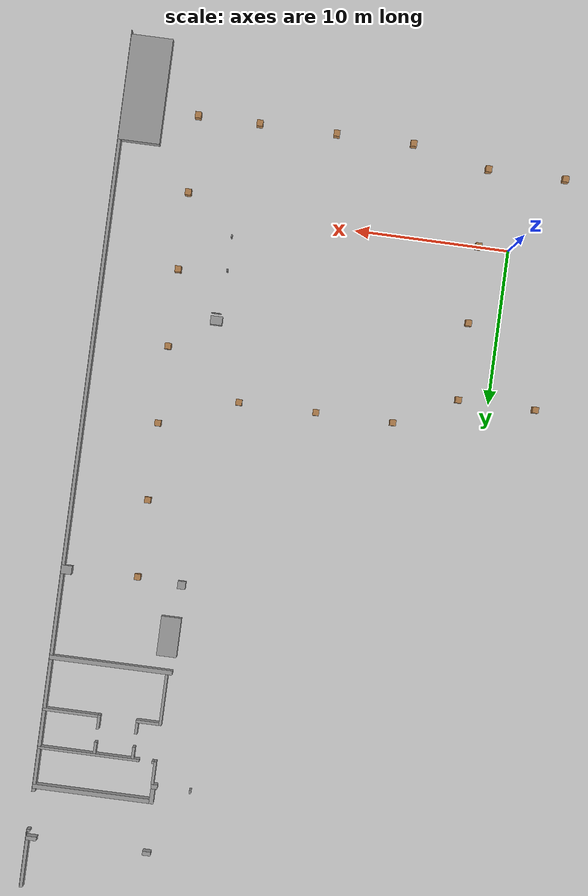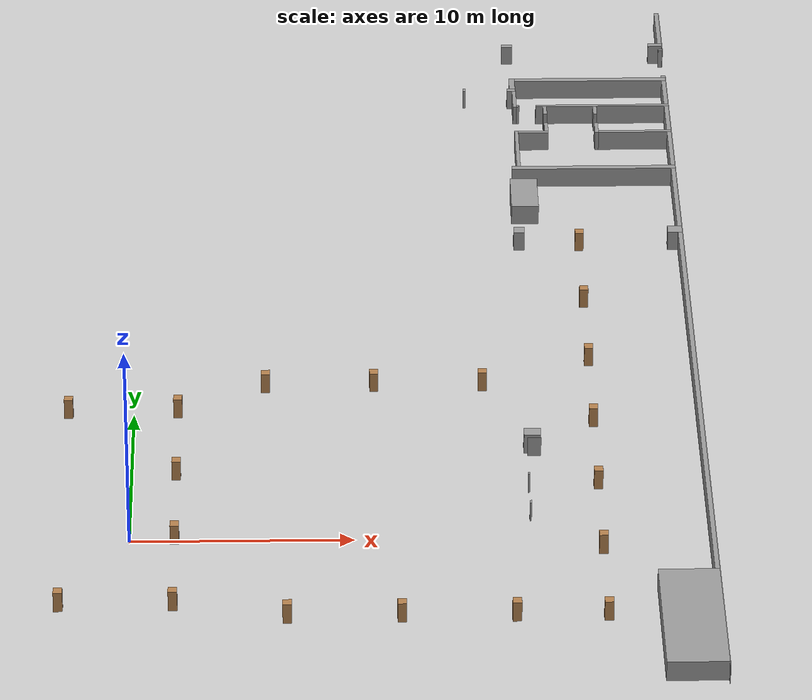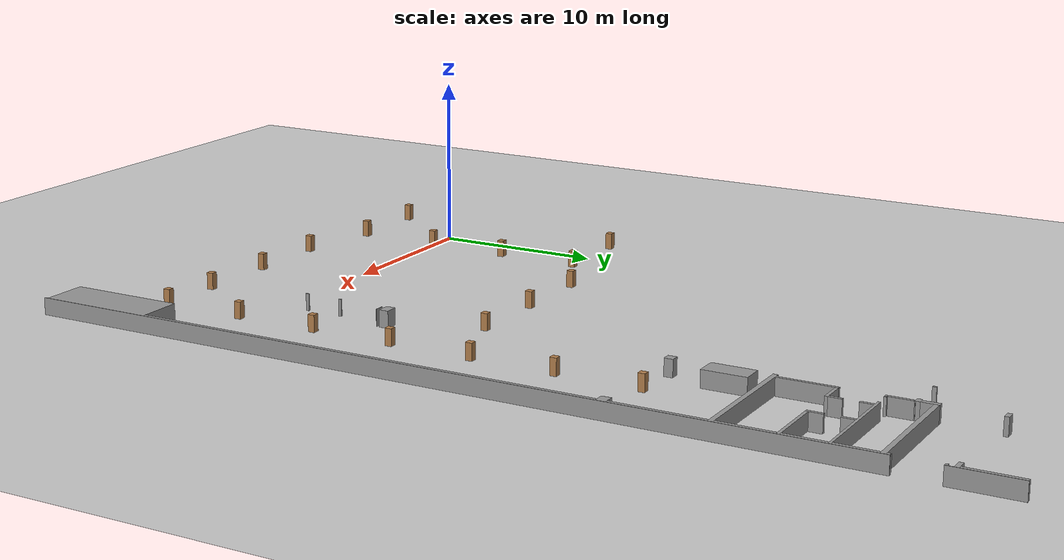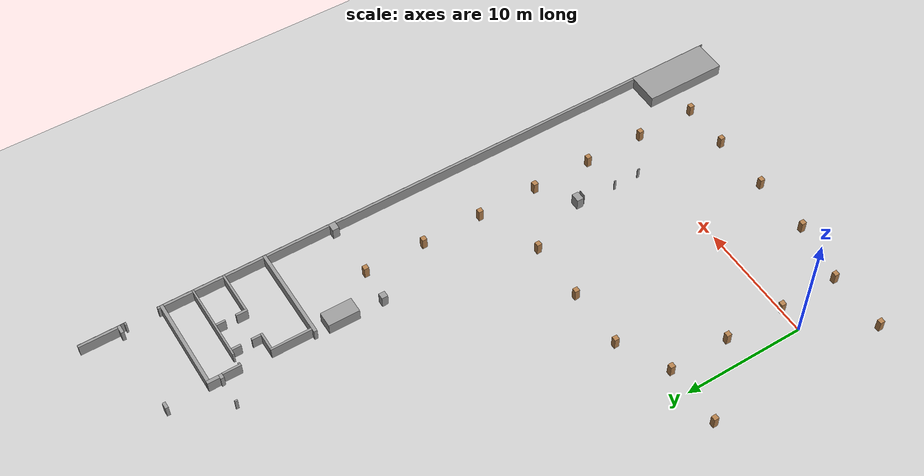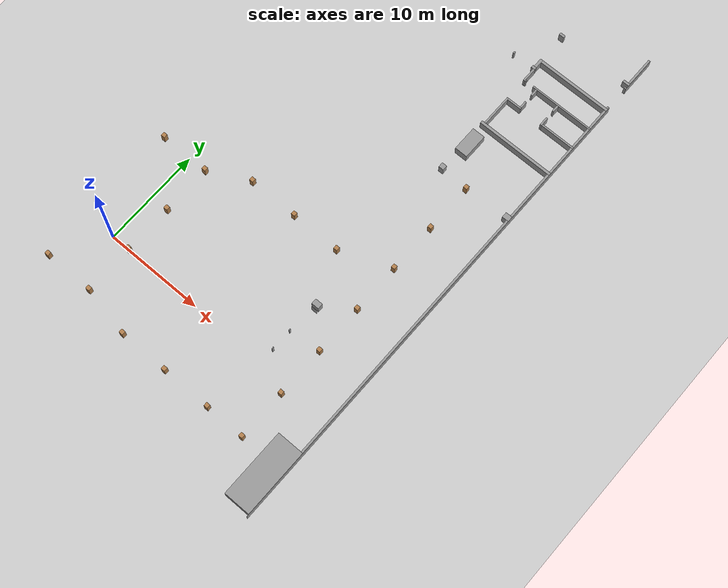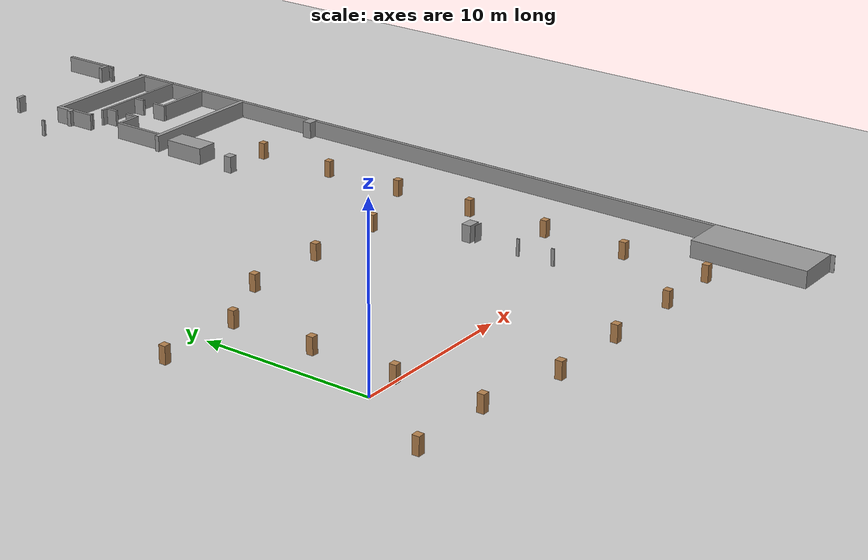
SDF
<sdf version="1.4">
 <world name="default">
  <model name="ground_plane">
   <static>1</static>
   <link name="link">
    <collision name="collision">
     <geometry><plane><normal>0 0 1</normal><size>100 100</size></plane></geometry>
     <surface><friction><ode><mu>100</mu><mu2>50</mu2></ode></friction></surface>
    </collision>
    <visual name="visual">
     <cast_shadows>0</cast_shadows>
     <geometry><plane><normal>0 0 1</normal><size>100 100</size></plane></geometry>
     <material>
      <script><uri>file://media/materials/scripts/gazebo.material</uri><name>Gazebo/Grey</name></script>
     </material>
    </visual>
    <velocity_decay><linear>0</linear><angular>0</angular></velocity_decay>
   </link>
  </model>
  <model name="walls">
   <static>1</static>
   <link name="Wall_116">
    <collision name="Wall_116_Collision">
     <geometry><box><size>0.22979 0.12766 1</size></box></geometry>
     <pose>60.0128 -22.8383 0.5 0 -0 0</pose>
    </collision>
    <visual name="Wall_116_Visual">
     <geometry><box><size>0.22979 0.12766 1</size></box></geometry>
     <material>
      <script><uri>file://media/materials/scripts/gazebo.material</uri><name>Gazebo/Grey</name></script>
     </material>
     <pose>60.0128 -22.8383 0.5 0 -0 0</pose>
    </visual>
    <velocity_decay><linear>0</linear><angular>0</angular></velocity_decay>
   </link>
   <link name="Wall_117">
    <collision name="Wall_117_Collision">
     <geometry><box><size>0.5617 0.76596 1</size></box></geometry>
     <pose>29.7191 -25.1234 0.5 0 -0 0</pose>
    </collision>
    <visual name="Wall_117_Visual">
     <geometry><box><size>0.5617 0.76596 1</size></box></geometry>
     <material>
      <script><uri>file://media/materials/scripts/gazebo.material</uri><name>Gazebo/Grey</name></script>
     </material>
     <pose>29.7191 -25.1234 0.5 0 -0 0</pose>
    </visual>
    <velocity_decay><linear>0</linear><angular>0</angular></velocity_decay>
   </link>
   <link name="Wall_118">
    <collision name="Wall_118_Collision">
     <geometry><box><size>0.20426 0.0766 1</size></box></geometry>
     <pose>24.2043 -24.8553 0.5 0 -0 0</pose>
    </collision>
    <visual name="Wall_118_Visual">
     <geometry><box><size>0.20426 0.0766 1</size></box></geometry>
     <material>
      <script><uri>file://media/materials/scripts/gazebo.material</uri><name>Gazebo/Grey</name></script>
     </material>
     <pose>24.2043 -24.8553 0.5 0 -0 0</pose>
    </visual>
    <velocity_decay><linear>0</linear><angular>0</angular></velocity_decay>
   </link>
   <link name="Wall_119">
    <collision name="Wall_119_Collision">
     <geometry><box><size>0.17872 0.0766 1</size></box></geometry>
     <pose>26.4128 -24.8553 0.5 0 -0 0</pose>
    </collision>
    <visual name="Wall_119_Visual">
     <geometry><box><size>0.17872 0.0766 1</size></box></geometry>
     <material>
      <script><uri>file://media/materials/scripts/gazebo.material</uri><name>Gazebo/Grey</name></script>
     </material>
     <pose>26.4128 -24.8553 0.5 0 -0 0</pose>
    </visual>
    <velocity_decay><linear>0</linear><angular>0</angular></velocity_decay>
   </link>
   <link name="Wall_120">
    <collision name="Wall_120_Collision">
     <geometry><box><size>2.55319 1.30213 1</size></box></geometry>
     <pose>50.2979 -25.4936 0.5 0 -0 0</pose>
    </collision>
    <visual name="Wall_120_Visual">
     <geometry><box><size>2.55319 1.30213 1</size></box></geometry>
     <material>
      <script><uri>file://media/materials/scripts/gazebo.material</uri><name>Gazebo/Grey</name></script>
     </material>
     <pose>50.2979 -25.4936 0.5 0 -0 0</pose>
    </visual>
    <velocity_decay><linear>0</linear><angular>0</angular></velocity_decay>
   </link>
   <link name="Wall_121">
    <collision name="Wall_121_Collision">
     <geometry><box><size>0.25532 0.53617 1</size></box></geometry>
     <pose>64.3149 -25.1106 0.5 0 -0 0</pose>
    </collision>
    <visual name="Wall_121_Visual">
     <geometry><box><size>0.25532 0.53617 1</size></box></geometry>
     <material>
      <script><uri>file://media/materials/scripts/gazebo.material</uri><name>Gazebo/Grey</name></script>
     </material>
     <pose>64.3149 -25.1106 0.5 0 -0 0</pose>
    </visual>
    <velocity_decay><linear>0</linear><angular>0</angular></velocity_decay>
   </link>
   <link name="Wall_122">
    <collision name="Wall_122_Collision">
     <geometry><box><size>0.51064 0.51064 1</size></box></geometry>
     <pose>46.9021 -25.1234 0.5 0 -0 0</pose>
    </collision>
    <visual name="Wall_122_Visual">
     <geometry><box><size>0.51064 0.51064 1</size></box></geometry>
     <material>
      <script><uri>file://media/materials/scripts/gazebo.material</uri><name>Gazebo/Grey</name></script>
     </material>
     <pose>46.9021 -25.1234 0.5 0 -0 0</pose>
    </visual>
    <velocity_decay><linear>0</linear><angular>0</angular></velocity_decay>
   </link>
   <link name="Wall_123">
    <collision name="Wall_123_Collision">
     <geometry><box><size>0.02553 0.61277 1</size></box></geometry>
     <pose>29.2468 -25.2 0.5 0 -0 0</pose>
    </collision>
    <visual name="Wall_123_Visual">
     <geometry><box><size>0.02553 0.61277 1</size></box></geometry>
     <material>
      <script><uri>file://media/materials/scripts/gazebo.material</uri><name>Gazebo/Grey</name></script>
     </material>
     <pose>29.2468 -25.2 0.5 0 -0 0</pose>
    </visual>
    <velocity_decay><linear>0</linear><angular>0</angular></velocity_decay>
   </link>
   <link name="Wall_124">
    <collision name="Wall_124_Collision">
     <geometry><box><size>0.28085 7.96596 1</size></box></geometry>
     <pose>52.583 -28.9532 0.5 0 -0 0</pose>
    </collision>
    <visual name="Wall_124_Visual">
     <geometry><box><size>0.28085 7.96596 1</size></box></geometry>
     <material>
      <script><uri>file://media/materials/scripts/gazebo.material</uri><name>Gazebo/Grey</name></script>
     </material>
     <pose>52.583 -28.9532 0.5 0 -0 0</pose>
    </visual>
    <velocity_decay><linear>0</linear><angular>0</angular></velocity_decay>
   </link>
   <link name="Wall_125">
    <collision name="Wall_125_Collision">
     <geometry><box><size>0.28085 0.40851 1</size></box></geometry>
     <pose>59.9872 -25.1745 0.5 0 -0 0</pose>
    </collision>
    <visual name="Wall_125_Visual">
     <geometry><box><size>0.28085 0.40851 1</size></box></geometry>
     <material>
      <script><uri>file://media/materials/scripts/gazebo.material</uri><name>Gazebo/Grey</name></script>
     </material>
     <pose>59.9872 -25.1745 0.5 0 -0 0</pose>
    </visual>
    <velocity_decay><linear>0</linear><angular>0</angular></velocity_decay>
   </link>
   <link name="Wall_126">
    <collision name="Wall_126_Collision">
     <geometry><box><size>0.97021 0.28085 1</size></box></geometry>
     <pose>60.6128 -25.2383 0.5 0 -0 0</pose>
    </collision>
    <visual name="Wall_126_Visual">
     <geometry><box><size>0.97021 0.28085 1</size></box></geometry>
     <material>
      <script><uri>file://media/materials/scripts/gazebo.material</uri><name>Gazebo/Grey</name></script>
     </material>
     <pose>60.6128 -25.2383 0.5 0 -0 0</pose>
    </visual>
    <velocity_decay><linear>0</linear><angular>0</angular></velocity_decay>
   </link>
   <link name="Wall_127">
    <collision name="Wall_127_Collision">
     <geometry><box><size>3.31915 0.17872 1</size></box></geometry>
     <pose>54.383 -25.3149 0.5 0 -0 0</pose>
    </collision>
    <visual name="Wall_127_Visual">
     <geometry><box><size>3.31915 0.17872 1</size></box></geometry>
     <material>
      <script><uri>file://media/materials/scripts/gazebo.material</uri><name>Gazebo/Grey</name></script>
     </material>
     <pose>54.383 -25.3149 0.5 0 -0 0</pose>
    </visual>
    <velocity_decay><linear>0</linear><angular>0</angular></velocity_decay>
   </link>
   <link name="Wall_128">
    <collision name="Wall_128_Collision">
     <geometry><box><size>1.48085 0.17872 1</size></box></geometry>
     <pose>59.1064 -25.3149 0.5 0 -0 0</pose>
    </collision>
    <visual name="Wall_128_Visual">
     <geometry><box><size>1.48085 0.17872 1</size></box></geometry>
     <material>
      <script><uri>file://media/materials/scripts/gazebo.material</uri><name>Gazebo/Grey</name></script>
     </material>
     <pose>59.1064 -25.3149 0.5 0 -0 0</pose>
    </visual>
    <velocity_decay><linear>0</linear><angular>0</angular></velocity_decay>
   </link>
   <link name="Wall_129">
    <collision name="Wall_129_Collision">
     <geometry><box><size>0.05106 0.02553 1</size></box></geometry>
     <pose>59.8723 -25.3915 0.5 0 -0 0</pose>
    </collision>
    <visual name="Wall_129_Visual">
     <geometry><box><size>0.05106 0.02553 1</size></box></geometry>
     <material>
      <script><uri>file://media/materials/scripts/gazebo.material</uri><name>Gazebo/Grey</name></script>
     </material>
     <pose>59.8723 -25.3915 0.5 0 -0 0</pose>
    </visual>
    <velocity_decay><linear>0</linear><angular>0</angular></velocity_decay>
   </link>
   <link name="Wall_130">
    <collision name="Wall_130_Collision">
     <geometry><box><size>0.28085 7.55745 1</size></box></geometry>
     <pose>60.9575 -29.1575 0.5 0 -0 0</pose>
    </collision>
    <visual name="Wall_130_Visual">
     <geometry><box><size>0.28085 7.55745 1</size></box></geometry>
     <material>
      <script><uri>file://media/materials/scripts/gazebo.material</uri><name>Gazebo/Grey</name></script>
     </material>
     <pose>60.9575 -29.1575 0.5 0 -0 0</pose>
    </visual>
    <velocity_decay><linear>0</linear><angular>0</angular></velocity_decay>
   </link>
   <link name="Wall_131">
    <collision name="Wall_131_Collision">
     <geometry><box><size>0.17872 1.48085 1</size></box></geometry>
     <pose>55.9532 -26.1447 0.5 0 -0 0</pose>
    </collision>
    <visual name="Wall_131_Visual">
     <geometry><box><size>0.17872 1.48085 1</size></box></geometry>
     <material>
      <script><uri>file://media/materials/scripts/gazebo.material</uri><name>Gazebo/Grey</name></script>
     </material>
     <pose>55.9532 -26.1447 0.5 0 -0 0</pose>
    </visual>
    <velocity_decay><linear>0</linear><angular>0</angular></velocity_decay>
   </link>
   <link name="Wall_132">
    <collision name="Wall_132_Collision">
     <geometry><box><size>0.15319 0.12766 1</size></box></geometry>
     <pose>58.4425 -25.4681 0.5 0 -0 0</pose>
    </collision>
    <visual name="Wall_132_Visual">
     <geometry><box><size>0.15319 0.12766 1</size></box></geometry>
     <material>
      <script><uri>file://media/materials/scripts/gazebo.material</uri><name>Gazebo/Grey</name></script>
     </material>
     <pose>58.4425 -25.4681 0.5 0 -0 0</pose>
    </visual>
    <velocity_decay><linear>0</linear><angular>0</angular></velocity_decay>
   </link>
   <link name="Wall_133">
    <collision name="Wall_133_Collision">
     <geometry><box><size>0.15319 6.58723 1</size></box></geometry>
     <pose>58.4425 -29.6425 0.5 0 -0 0</pose>
    </collision>
    <visual name="Wall_133_Visual">
     <geometry><box><size>0.15319 6.58723 1</size></box></geometry>
     <material>
      <script><uri>file://media/materials/scripts/gazebo.material</uri><name>Gazebo/Grey</name></script>
     </material>
     <pose>58.4425 -29.6425 0.5 0 -0 0</pose>
    </visual>
    <velocity_decay><linear>0</linear><angular>0</angular></velocity_decay>
   </link>
   <link name="Wall_134">
    <collision name="Wall_134_Collision">
     <geometry><box><size>0.74043 0.17872 1</size></box></geometry>
     <pose>56.4128 -26.7957 0.5 0 -0 0</pose>
    </collision>
    <visual name="Wall_134_Visual">
     <geometry><box><size>0.74043 0.17872 1</size></box></geometry>
     <material>
      <script><uri>file://media/materials/scripts/gazebo.material</uri><name>Gazebo/Grey</name></script>
     </material>
     <pose>56.4128 -26.7957 0.5 0 -0 0</pose>
    </visual>
    <velocity_decay><linear>0</linear><angular>0</angular></velocity_decay>
   </link>
   <link name="Wall_135">
    <collision name="Wall_135_Collision">
     <geometry><box><size>0.74043 0.17872 1</size></box></geometry>
     <pose>57.9957 -26.7957 0.5 0 -0 0</pose>
    </collision>
    <visual name="Wall_135_Visual">
     <geometry><box><size>0.74043 0.17872 1</size></box></geometry>
     <material>
      <script><uri>file://media/materials/scripts/gazebo.material</uri><name>Gazebo/Grey</name></script>
     </material>
     <pose>57.9957 -26.7957 0.5 0 -0 0</pose>
    </visual>
    <velocity_decay><linear>0</linear><angular>0</angular></velocity_decay>
   </link>
   <link name="Wall_136">
    <collision name="Wall_136_Collision">
     <geometry><box><size>0.91915 0.17872 1</size></box></geometry>
     <pose>56.3234 -29.2723 0.5 0 -0 0</pose>
    </collision>
    <visual name="Wall_136_Visual">
     <geometry><box><size>0.91915 0.17872 1</size></box></geometry>
     <material>
      <script><uri>file://media/materials/scripts/gazebo.material</uri><name>Gazebo/Grey</name></script>
     </material>
     <pose>56.3234 -29.2723 0.5 0 -0 0</pose>
    </visual>
    <velocity_decay><linear>0</linear><angular>0</angular></velocity_decay>
   </link>
   <link name="Wall_137">
    <collision name="Wall_137_Collision">
     <geometry><box><size>0.74043 0.17872 1</size></box></geometry>
     <pose>57.9957 -29.2723 0.5 0 -0 0</pose>
    </collision>
    <visual name="Wall_137_Visual">
     <geometry><box><size>0.74043 0.17872 1</size></box></geometry>
     <material>
      <script><uri>file://media/materials/scripts/gazebo.material</uri><name>Gazebo/Grey</name></script>
     </material>
     <pose>57.9957 -29.2723 0.5 0 -0 0</pose>
    </visual>
    <velocity_decay><linear>0</linear><angular>0</angular></velocity_decay>
   </link>
   <link name="Wall_138">
    <collision name="Wall_138_Collision">
     <geometry><box><size>0.17872 3.57447 1</size></box></geometry>
     <pose>55.9532 -31.1489 0.5 0 -0 0</pose>
    </collision>
    <visual name="Wall_138_Visual">
     <geometry><box><size>0.17872 3.57447 1</size></box></geometry>
     <material>
      <script><uri>file://media/materials/scripts/gazebo.material</uri><name>Gazebo/Grey</name></script>
     </material>
     <pose>55.9532 -31.1489 0.5 0 -0 0</pose>
    </visual>
    <velocity_decay><linear>0</linear><angular>0</angular></velocity_decay>
   </link>
   <link name="Wall_139">
    <collision name="Wall_139_Collision">
     <geometry><box><size>6.81702 2.70638 1</size></box></geometry>
     <pose>15.5617 -31.583 0.5 0 -0 0</pose>
    </collision>
    <visual name="Wall_139_Visual">
     <geometry><box><size>6.81702 2.70638 1</size></box></geometry>
     <material>
      <script><uri>file://media/materials/scripts/gazebo.material</uri><name>Gazebo/Grey</name></script>
     </material>
     <pose>15.5617 -31.583 0.5 0 -0 0</pose>
    </visual>
    <velocity_decay><linear>0</linear><angular>0</angular></velocity_decay>
   </link>
   <link name="Wall_140">
    <collision name="Wall_140_Collision">
     <geometry><box><size>0.5617 0.68936 1</size></box></geometry>
     <pose>46.8766 -32.5915 0.5 0 -0 0</pose>
    </collision>
    <visual name="Wall_140_Visual">
     <geometry><box><size>0.5617 0.68936 1</size></box></geometry>
     <material>
      <script><uri>file://media/materials/scripts/gazebo.material</uri><name>Gazebo/Grey</name></script>
     </material>
     <pose>46.8766 -32.5915 0.5 0 -0 0</pose>
    </visual>
    <velocity_decay><linear>0</linear><angular>0</angular></velocity_decay>
   </link>
   <link name="Wall_141">
    <collision name="Wall_141_Collision">
     <geometry><box><size>0.25532 0.68936 1</size></box></geometry>
     <pose>64.3149 -32.5915 0.5 0 -0 0</pose>
    </collision>
    <visual name="Wall_141_Visual">
     <geometry><box><size>0.25532 0.68936 1</size></box></geometry>
     <material>
      <script><uri>file://media/materials/scripts/gazebo.material</uri><name>Gazebo/Grey</name></script>
     </material>
     <pose>64.3149 -32.5915 0.5 0 -0 0</pose>
    </visual>
    <velocity_decay><linear>0</linear><angular>0</angular></velocity_decay>
   </link>
   <link name="Wall_142">
    <collision name="Wall_142_Collision">
     <geometry><box><size>27.6255 0.20426 1</size></box></geometry>
     <pose>32.783 -32.834 0.5 0 -0 0</pose>
    </collision>
    <visual name="Wall_142_Visual">
     <geometry><box><size>27.6255 0.20426 1</size></box></geometry>
     <material>
      <script><uri>file://media/materials/scripts/gazebo.material</uri><name>Gazebo/Grey</name></script>
     </material>
     <pose>32.783 -32.834 0.5 0 -0 0</pose>
    </visual>
    <velocity_decay><linear>0</linear><angular>0</angular></velocity_decay>
   </link>
   <link name="Wall_143">
    <collision name="Wall_143_Collision">
     <geometry><box><size>5.28511 0.20426 1</size></box></geometry>
     <pose>49.8 -32.834 0.5 0 -0 0</pose>
    </collision>
    <visual name="Wall_143_Visual">
     <geometry><box><size>5.28511 0.20426 1</size></box></geometry>
     <material>
      <script><uri>file://media/materials/scripts/gazebo.material</uri><name>Gazebo/Grey</name></script>
     </material>
     <pose>49.8 -32.834 0.5 0 -0 0</pose>
    </visual>
    <velocity_decay><linear>0</linear><angular>0</angular></velocity_decay>
   </link>
   <link name="Wall_144">
    <collision name="Wall_144_Collision">
     <geometry><box><size>3.14043 0.20426 1</size></box></geometry>
     <pose>54.2936 -32.834 0.5 0 -0 0</pose>
    </collision>
    <visual name="Wall_144_Visual">
     <geometry><box><size>3.14043 0.20426 1</size></box></geometry>
     <material>
      <script><uri>file://media/materials/scripts/gazebo.material</uri><name>Gazebo/Grey</name></script>
     </material>
     <pose>54.2936 -32.834 0.5 0 -0 0</pose>
    </visual>
    <velocity_decay><linear>0</linear><angular>0</angular></velocity_decay>
   </link>
   <link name="Wall_145">
    <collision name="Wall_145_Collision">
     <geometry><box><size>2.3234 0.20426 1</size></box></geometry>
     <pose>57.2043 -32.834 0.5 0 -0 0</pose>
    </collision>
    <visual name="Wall_145_Visual">
     <geometry><box><size>2.3234 0.20426 1</size></box></geometry>
     <material>
      <script><uri>file://media/materials/scripts/gazebo.material</uri><name>Gazebo/Grey</name></script>
     </material>
     <pose>57.2043 -32.834 0.5 0 -0 0</pose>
    </visual>
    <velocity_decay><linear>0</linear><angular>0</angular></velocity_decay>
   </link>
   <link name="Wall_146">
    <collision name="Wall_146_Collision">
     <geometry><box><size>2.29787 0.20426 1</size></box></geometry>
     <pose>59.6681 -32.834 0.5 0 -0 0</pose>
    </collision>
    <visual name="Wall_146_Visual">
     <geometry><box><size>2.29787 0.20426 1</size></box></geometry>
     <material>
      <script><uri>file://media/materials/scripts/gazebo.material</uri><name>Gazebo/Grey</name></script>
     </material>
     <pose>59.6681 -32.834 0.5 0 -0 0</pose>
    </visual>
    <velocity_decay><linear>0</linear><angular>0</angular></velocity_decay>
   </link>
   <link name="Wall_147">
    <collision name="Wall_147_Collision">
     <geometry><box><size>0.20426 0.20426 1</size></box></geometry>
     <pose>61.2 -32.834 0.5 0 -0 0</pose>
    </collision>
    <visual name="Wall_147_Visual">
     <geometry><box><size>0.20426 0.20426 1</size></box></geometry>
     <material>
      <script><uri>file://media/materials/scripts/gazebo.material</uri><name>Gazebo/Grey</name></script>
     </material>
     <pose>61.2 -32.834 0.5 0 -0 0</pose>
    </visual>
    <velocity_decay><linear>0</linear><angular>0</angular></velocity_decay>
   </link>
   <link name="Wall_148">
    <collision name="Wall_148_Collision">
     <geometry><box><size>0.15319 0.20426 1</size></box></geometry>
     <pose>63.8298 -32.834 0.5 0 -0 0</pose>
    </collision>
    <visual name="Wall_148_Visual">
     <geometry><box><size>0.15319 0.20426 1</size></box></geometry>
     <material>
      <script><uri>file://media/materials/scripts/gazebo.material</uri><name>Gazebo/Grey</name></script>
     </material>
     <pose>63.8298 -32.834 0.5 0 -0 0</pose>
    </visual>
    <velocity_decay><linear>0</linear><angular>0</angular></velocity_decay>
   </link>
   <link name="Wall_149">
    <collision name="Wall_149_Collision">
     <geometry><box><size>3.06383 0.20426 1</size></box></geometry>
     <pose>65.9745 -32.834 0.5 0 -0 0</pose>
    </collision>
    <visual name="Wall_149_Visual">
     <geometry><box><size>3.06383 0.20426 1</size></box></geometry>
     <material>
      <script><uri>file://media/materials/scripts/gazebo.material</uri><name>Gazebo/Grey</name></script>
     </material>
     <pose>65.9745 -32.834 0.5 0 -0 0</pose>
    </visual>
    <velocity_decay><linear>0</linear><angular>0</angular></velocity_decay>
   </link>
   <link name="Wall_150">
    <collision name="Wall_150_Collision">
     <geometry><box><size>49.4043 0.02553 1</size></box></geometry>
     <pose>36.6 -32.9489 0.5 0 -0 0</pose>
    </collision>
    <visual name="Wall_150_Visual">
     <geometry><box><size>49.4043 0.02553 1</size></box></geometry>
     <material>
      <script><uri>file://media/materials/scripts/gazebo.material</uri><name>Gazebo/Grey</name></script>
     </material>
     <pose>36.6 -32.9489 0.5 0 -0 0</pose>
    </visual>
    <velocity_decay><linear>0</linear><angular>0</angular></velocity_decay>
   </link>
   <link name="Wall_151">
    <collision name="Wall_151_Collision">
     <geometry><box><size>3.75319 0.02553 1</size></box></geometry>
     <pose>65.6298 -32.9489 0.5 0 -0 0</pose>
    </collision>
    <visual name="Wall_151_Visual">
     <geometry><box><size>3.75319 0.02553 1</size></box></geometry>
     <material>
      <script><uri>file://media/materials/scripts/gazebo.material</uri><name>Gazebo/Grey</name></script>
     </material>
     <pose>65.6298 -32.9489 0.5 0 -0 0</pose>
    </visual>
    <velocity_decay><linear>0</linear><angular>0</angular></velocity_decay>
   </link>
   <pose>-7 -22.75 0 0 -0 1.5708</pose>
  </model>
  <model name="box_12">
   <static>0</static>
   <link name="link">
    <collision name="colision"><geometry><box><size>0.4 0.4 1</size></box></geometry></collision>
    <visual name="visual">
     <geometry><box><size>0.4 0.4 1</size></box></geometry>
     <material>
      <script><uri>file://media/materials/scripts/gazebo.material</uri><name>Gazebo/WoodPallet</name></script>
     </material>
    </visual>
    <velocity_decay><linear>0</linear><angular>0</angular></velocity_decay>
    <inertial>
     <inertia><ixx>1</ixx><ixy>0</ixy><ixz>0</ixz><iyy>1</iyy><iyz>0</iyz><izz>1</izz></inertia>
     <mass>1</mass>
    </inertial>
   </link>
   <pose>7 -5.99998 0.500001 1e-06 5e-06 -0.000179</pose>
  </model>
  <model name="box_13">
   <static>0</static>
   <link name="link">
    <collision name="colision"><geometry><box><size>0.4 0.4 1</size></box></geometry></collision>
    <visual name="visual">
     <geometry><box><size>0.4 0.4 1</size></box></geometry>
     <material>
      <script><uri>file://media/materials/scripts/gazebo.material</uri><name>Gazebo/WoodPallet</name></script>
     </material>
    </visual>
    <velocity_decay><linear>0</linear><angular>0</angular></velocity_decay>
    <inertial>
     <inertia><ixx>1</ixx><ixy>0</ixy><ixz>0</ixz><iyy>1</iyy><iyz>0</iyz><izz>1</izz></inertia>
     <mass>1</mass>
    </inertial>
   </link>
   <pose>12 -6 0.5 1e-06 -0 -0.000118</pose>
  </model>
  <model name="box_14">
   <static>0</static>
   <link name="link">
    <collision name="colision"><geometry><box><size>0.4 0.4 1</size></box></geometry></collision>
    <visual name="visual">
     <geometry><box><size>0.4 0.4 1</size></box></geometry>
     <material>
      <script><uri>file://media/materials/scripts/gazebo.material</uri><name>Gazebo/WoodPallet</name></script>
     </material>
    </visual>
    <velocity_decay><linear>0</linear><angular>0</angular></velocity_decay>
    <inertial>
     <inertia><ixx>1</ixx><ixy>0</ixy><ixz>0</ixz><iyy>1</iyy><iyz>0</iyz><izz>1</izz></inertia>
     <mass>1</mass>
    </inertial>
   </link>
   <pose>17 -5.99999 0.5 1e-06 -1e-06 -7.4e-05</pose>
  </model>
  <model name="box_21">
   <static>0</static>
   <link name="link">
    <collision name="colision"><geometry><box><size>0.4 0.4 1</size></box></geometry></collision>
    <visual name="visual">
     <geometry><box><size>0.4 0.4 1</size></box></geometry>
     <material>
      <script><uri>file://media/materials/scripts/gazebo.material</uri><name>Gazebo/WoodPallet</name></script>
     </material>
    </visual>
    <velocity_decay><linear>0</linear><angular>0</angular></velocity_decay>
    <inertial>
     <inertia><ixx>1</ixx><ixy>0</ixy><ixz>0</ixz><iyy>1</iyy><iyz>0</iyz><izz>1</izz></inertia>
     <mass>1</mass>
    </inertial>
   </link>
   <pose>21 -5.99999 0.5 -1e-06 -2e-06 -0.000121</pose>
  </model>
  <model name="box_22">
   <static>0</static>
   <link name="link">
    <collision name="colision"><geometry><box><size>0.4 0.4 1</size></box></geometry></collision>
    <visual name="visual">
     <geometry><box><size>0.4 0.4 1</size></box></geometry>
     <material>
      <script><uri>file://media/materials/scripts/gazebo.material</uri><name>Gazebo/WoodPallet</name></script>
     </material>
    </visual>
    <velocity_decay><linear>0</linear><angular>0</angular></velocity_decay>
    <inertial>
     <inertia><ixx>1</ixx><ixy>0</ixy><ixz>0</ixz><iyy>1</iyy><iyz>0</iyz><izz>1</izz></inertia>
     <mass>1</mass>
    </inertial>
   </link>
   <pose>21 -0.999994 0.5 -8.07794e-28 1e-06 -7e-06</pose>
  </model>
  <model name="box_23">
   <static>0</static>
   <link name="link">
    <collision name="colision"><geometry><box><size>0.4 0.4 1</size></box></geometry></collision>
    <visual name="visual">
     <geometry><box><size>0.4 0.4 1</size></box></geometry>
     <material>
      <script><uri>file://media/materials/scripts/gazebo.material</uri><name>Gazebo/WoodPallet</name></script>
     </material>
    </visual>
    <velocity_decay><linear>0</linear><angular>0</angular></velocity_decay>
    <inertial>
     <inertia><ixx>1</ixx><ixy>0</ixy><ixz>0</ixz><iyy>1</iyy><iyz>0</iyz><izz>1</izz></inertia>
     <mass>1</mass>
    </inertial>
   </link>
   <pose>21 4.00001 0.500001 7e-06 -1e-06 -8.1e-05</pose>
  </model>
  <model name="box_24">
   <static>0</static>
   <link name="link">
    <collision name="colision"><geometry><box><size>0.4 0.4 1</size></box></geometry></collision>
    <visual name="visual">
     <geometry><box><size>0.4 0.4 1</size></box></geometry>
     <material>
      <script><uri>file://media/materials/scripts/gazebo.material</uri><name>Gazebo/WoodPallet</name></script>
     </material>
    </visual>
    <velocity_decay><linear>0</linear><angular>0</angular></velocity_decay>
    <inertial>
     <inertia><ixx>1</ixx><ixy>0</ixy><ixz>0</ixz><iyy>1</iyy><iyz>0</iyz><izz>1</izz></inertia>
     <mass>1</mass>
    </inertial>
   </link>
   <pose>21 9.00001 0.5 2e-06 -0 -4.6e-05</pose>
  </model>
  <model name="box_25">
   <static>0</static>
   <link name="link">
    <collision name="colision"><geometry><box><size>0.4 0.4 1</size></box></geometry></collision>
    <visual name="visual">
     <geometry><box><size>0.4 0.4 1</size></box></geometry>
     <material>
      <script><uri>file://media/materials/scripts/gazebo.material</uri><name>Gazebo/WoodPallet</name></script>
     </material>
    </visual>
    <velocity_decay><linear>0</linear><angular>0</angular></velocity_decay>
    <inertial>
     <inertia><ixx>1</ixx><ixy>0</ixy><ixz>0</ixz><iyy>1</iyy><iyz>0</iyz><izz>1</izz></inertia>
     <mass>1</mass>
    </inertial>
   </link>
   <pose>21 14 0.5 6.46235e-27 1e-06 3.8e-05</pose>
  </model>
  <model name="box_26">
   <static>0</static>
   <link name="link">
    <collision name="colision"><geometry><box><size>0.4 0.4 1</size></box></geometry></collision>
    <visual name="visual">
     <geometry><box><size>0.4 0.4 1</size></box></geometry>
     <material>
      <script><uri>file://media/materials/scripts/gazebo.material</uri><name>Gazebo/WoodPallet</name></script>
     </material>
    </visual>
    <velocity_decay><linear>0</linear><angular>0</angular></velocity_decay>
    <inertial>
     <inertia><ixx>1</ixx><ixy>0</ixy><ixz>0</ixz><iyy>1</iyy><iyz>0</iyz><izz>1</izz></inertia>
     <mass>1</mass>
    </inertial>
   </link>
   <pose>21 19 0.5 1e-06 -0 -4.8e-05</pose>
  </model>
  <model name="box_27">
   <static>0</static>
   <link name="link">
    <collision name="colision"><geometry><box><size>0.4 0.4 1</size></box></geometry></collision>
    <visual name="visual">
     <geometry><box><size>0.4 0.4 1</size></box></geometry>
     <material>
      <script><uri>file://media/materials/scripts/gazebo.material</uri><name>Gazebo/WoodPallet</name></script>
     </material>
    </visual>
    <velocity_decay><linear>0</linear><angular>0</angular></velocity_decay>
    <inertial>
     <inertia><ixx>1</ixx><ixy>0</ixy><ixz>0</ixz><iyy>1</iyy><iyz>0</iyz><izz>1</izz></inertia>
     <mass>1</mass>
    </inertial>
   </link>
   <pose>21 24 0.5 -2.58494e-26 -1e-06 -0.00016</pose>
  </model>
  <model name="box_28">
   <static>0</static>
   <link name="link">
    <collision name="colision"><geometry><box><size>0.4 0.4 1</size></box></geometry></collision>
    <visual name="visual">
     <geometry><box><size>0.4 0.4 1</size></box></geometry>
     <material>
      <script><uri>file://media/materials/scripts/gazebo.material</uri><name>Gazebo/WoodPallet</name></script>
     </material>
    </visual>
    <velocity_decay><linear>0</linear><angular>0</angular></velocity_decay>
    <inertial>
     <inertia><ixx>1</ixx><ixy>0</ixy><ixz>0</ixz><iyy>1</iyy><iyz>0</iyz><izz>1</izz></inertia>
     <mass>1</mass>
    </inertial>
   </link>
   <pose>16 12 0.500001 6e-06 1.03398e-25 -7.2e-05</pose>
  </model>
  <model name="box_29">
   <static>0</static>
   <link name="link">
    <collision name="colision"><geometry><box><size>0.4 0.4 1</size></box></geometry></collision>
    <visual name="visual">
     <geometry><box><size>0.4 0.4 1</size></box></geometry>
     <material>
      <script><uri>file://media/materials/scripts/gazebo.material</uri><name>Gazebo/WoodPallet</name></script>
     </material>
    </visual>
    <velocity_decay><linear>0</linear><angular>0</angular></velocity_decay>
    <inertial>
     <inertia><ixx>1</ixx><ixy>0</ixy><ixz>0</ixz><iyy>1</iyy><iyz>0</iyz><izz>1</izz></inertia>
     <mass>1</mass>
    </inertial>
   </link>
   <pose>11 12 0.500001 -2e-06 -2e-06 -0.00014</pose>
  </model>
  <model name="box_30">
   <static>0</static>
   <link name="link">
    <collision name="colision"><geometry><box><size>0.4 0.4 1</size></box></geometry></collision>
    <visual name="visual">
     <geometry><box><size>0.4 0.4 1</size></box></geometry>
     <material>
      <script><uri>file://media/materials/scripts/gazebo.material</uri><name>Gazebo/WoodPallet</name></script>
     </material>
    </visual>
    <velocity_decay><linear>0</linear><angular>0</angular></velocity_decay>
    <inertial>
     <inertia><ixx>1</ixx><ixy>0</ixy><ixz>0</ixz><iyy>1</iyy><iyz>0</iyz><izz>1</izz></inertia>
     <mass>1</mass>
    </inertial>
   </link>
   <pose>6 12 0.5 -1e-06 -1.29247e-26 -0.000113</pose>
  </model>
  <model name="box_31">
   <static>0</static>
   <link name="link">
    <collision name="colision"><geometry><box><size>0.4 0.4 1</size></box></geometry></collision>
    <visual name="visual">
     <geometry><box><size>0.4 0.4 1</size></box></geometry>
     <material>
      <script><uri>file://media/materials/scripts/gazebo.material</uri><name>Gazebo/WoodPallet</name></script>
     </material>
    </visual>
    <velocity_decay><linear>0</linear><angular>0</angular></velocity_decay>
    <inertial>
     <inertia><ixx>1</ixx><ixy>0</ixy><ixz>0</ixz><iyy>1</iyy><iyz>0</iyz><izz>1</izz></inertia>
     <mass>1</mass>
    </inertial>
   </link>
   <pose>2 5.00002 0.5 0 1e-06 -7.9e-05</pose>
  </model>
  <model name="box_32">
   <static>0</static>
   <link name="link">
    <collision name="colision"><geometry><box><size>0.4 0.4 1</size></box></geometry></collision>
    <visual name="visual">
     <geometry><box><size>0.4 0.4 1</size></box></geometry>
     <material>
      <script><uri>file://media/materials/scripts/gazebo.material</uri><name>Gazebo/WoodPallet</name></script>
     </material>
    </visual>
    <velocity_decay><linear>0</linear><angular>0</angular></velocity_decay>
    <inertial>
     <inertia><ixx>1</ixx><ixy>0</ixy><ixz>0</ixz><iyy>1</iyy><iyz>0</iyz><izz>1</izz></inertia>
     <mass>1</mass>
    </inertial>
   </link>
   <pose>2 1.9e-05 0.5 0 0 -9.6e-05</pose>
  </model>
  <model name="box_33">
   <static>0</static>
   <link name="link">
    <collision name="colision"><geometry><box><size>0.4 0.4 1</size></box></geometry></collision>
    <visual name="visual">
     <geometry><box><size>0.4 0.4 1</size></box></geometry>
     <material>
      <script><uri>file://media/materials/scripts/gazebo.material</uri><name>Gazebo/WoodPallet</name></script>
     </material>
    </visual>
    <velocity_decay><linear>0</linear><angular>0</angular></velocity_decay>
    <inertial>
     <inertia><ixx>1</ixx><ixy>0</ixy><ixz>0</ixz><iyy>1</iyy><iyz>0</iyz><izz>1</izz></inertia>
     <mass>1</mass>
    </inertial>
   </link>
   <pose>2 -4.99998 0.5 -2e-06 2.58494e-26 -8.6e-05</pose>
  </model>
  <model name="box_34">
   <static>0</static>
   <link name="link">
    <collision name="colision"><geometry><box><size>0.4 0.4 1</size></box></geometry></collision>
    <visual name="visual">
     <geometry><box><size>0.4 0.4 1</size></box></geometry>
     <material>
      <script><uri>file://media/materials/scripts/gazebo.material</uri><name>Gazebo/WoodPallet</name></script>
     </material>
    </visual>
    <velocity_decay><linear>0</linear><angular>0</angular></velocity_decay>
    <inertial>
     <inertia><ixx>1</ixx><ixy>0</ixy><ixz>0</ixz><iyy>1</iyy><iyz>0</iyz><izz>1</izz></inertia>
     <mass>1</mass>
    </inertial>
   </link>
   <pose>2 10 0.5 0 -2e-06 -0.00012</pose>
  </model>
  <model name="box_35">
   <static>0</static>
   <link name="link">
    <collision name="colision"><geometry><box><size>0.4 0.4 1</size></box></geometry></collision>
    <visual name="visual">
     <geometry><box><size>0.4 0.4 1</size></box></geometry>
     <material>
      <script><uri>file://media/materials/scripts/gazebo.material</uri><name>Gazebo/WoodPallet</name></script>
     </material>
    </visual>
    <velocity_decay><linear>0</linear><angular>0</angular></velocity_decay>
    <inertial>
     <inertia><ixx>1</ixx><ixy>0</ixy><ixz>0</ixz><iyy>1</iyy><iyz>0</iyz><izz>1</izz></inertia>
     <mass>1</mass>
    </inertial>
   </link>
   <pose>-3 10 0.5 0 -0 -4.2e-05</pose>
  </model>
  <model name="box_36">
   <static>0</static>
   <link name="link">
    <collision name="colision"><geometry><box><size>0.4 0.4 1</size></box></geometry></collision>
    <visual name="visual">
     <geometry><box><size>0.4 0.4 1</size></box></geometry>
     <material>
      <script><uri>file://media/materials/scripts/gazebo.material</uri><name>Gazebo/WoodPallet</name></script>
     </material>
    </visual>
    <velocity_decay><linear>0</linear><angular>0</angular></velocity_decay>
    <inertial>
     <inertia><ixx>1</ixx><ixy>0</ixy><ixz>0</ixz><iyy>1</iyy><iyz>0</iyz><izz>1</izz></inertia>
     <mass>1</mass>
    </inertial>
   </link>
   <pose>-3 -5 0.5 0 0 -0.000128</pose>
  </model>
 </world>
</sdf>
